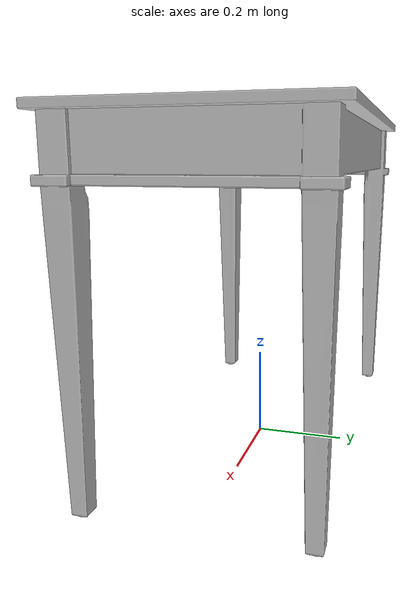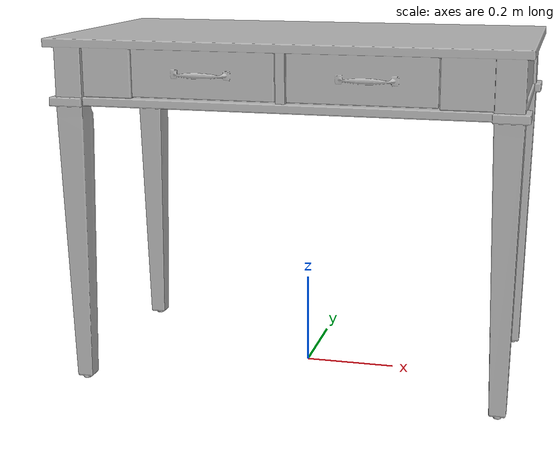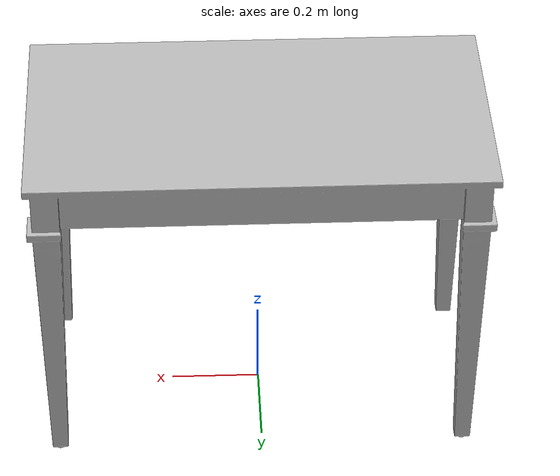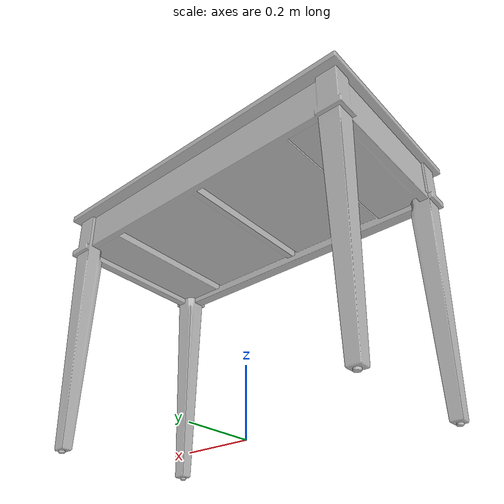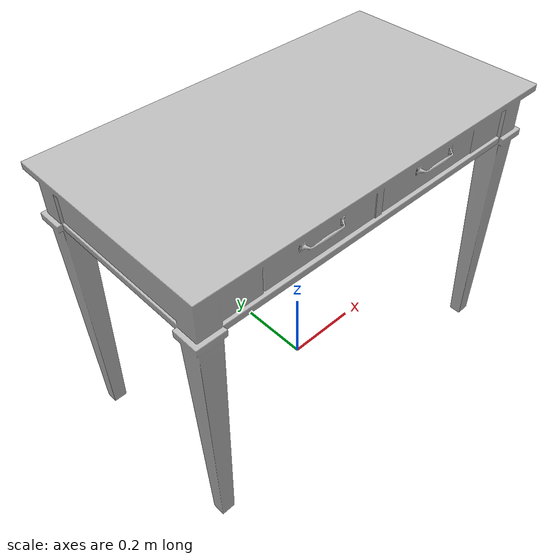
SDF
<sdf version="1.6">
	<model name="HomeOfficeDesks_Oab58b4fda1f7_lod0">
		<link name="main_link">
			<visual name="visual_RootNode">
				<geometry>
					<mesh>
						<uri>model://HomeOfficeDesks_Oab58b4fda1f7_lod0/meshes/visual_RootNode.dae</uri>
					</mesh>
				</geometry>
			</visual>
			<collision name="collision_RootNode_lod0_0">
				<geometry>
					<mesh>
						<uri>model://HomeOfficeDesks_Oab58b4fda1f7_lod0/meshes/collision_RootNode_lod0_0.dae</uri>
					</mesh>
				</geometry>
			</collision>
		</link>
	</model>
</sdf>
